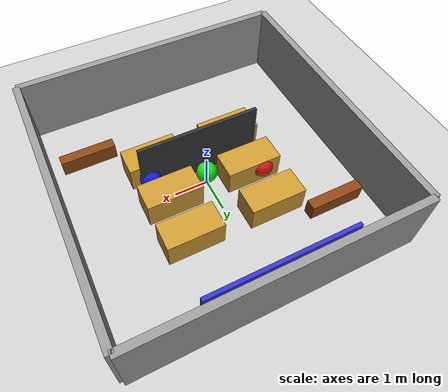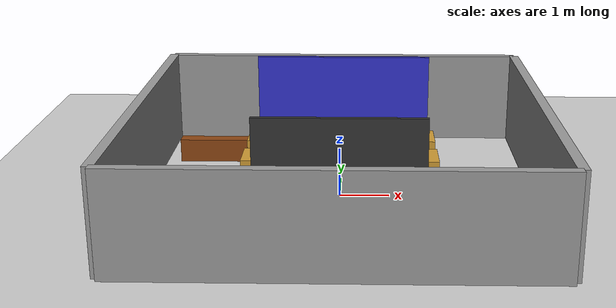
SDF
<sdf version='1.7'>
  <world name='classroom_labyrinthe'>
    <light name='sun' type='directional'>
      <cast_shadows>1</cast_shadows>
      <pose>0 0 10 0 -0 0</pose>
      <diffuse>0.8 0.8 0.8 1</diffuse>
      <specular>0.2 0.2 0.2 1</specular>
      <attenuation>
        <range>1000</range>
        <constant>0.9</constant>
        <linear>0.01</linear>
        <quadratic>0.001</quadratic>
      </attenuation>
      <direction>-0.5 0.1 -0.9</direction>
    </light>
    <model name='ground_plane'>
      <static>1</static>
      <link name='link'>
        <collision name='collision'>
          <geometry>
            <box>
              <size>20 20 1</size>
            </box>
          </geometry>
          <pose>0 0 -0.5 0 0 0</pose>
          <surface>
            <friction>
              <ode>
                <mu>0.5</mu>
                <mu2>0.5</mu2>
              </ode>
            </friction>
            <contact>
              <ode>
                <min_depth>0.001</min_depth>
                <kp>100.0</kp>
                <kd>1.0</kd>
              </ode>
            </contact>
          </surface>
        </collision>
        <visual name='visual'>
          <geometry>
            <plane>
              <normal>0 0 1</normal>
              <size>20 20</size>
            </plane>
          </geometry>
          <material>
            <script>
              <uri>file://media/materials/scripts/gazebo.material</uri>
              <name>Gazebo/Grey</name>
            </script>
          </material>
        </visual>
      </link>
    </model>
    <model name='wall_north'>
      <static>1</static>
      <link name='link'>
        <pose>0 4 1 0 -0 0</pose>
        <collision name='collision'>
          <geometry>
            <box>
              <size>8 0.2 2</size>
            </box>
          </geometry>
        </collision>
        <visual name='visual'>
          <geometry>
            <box>
              <size>8 0.2 2</size>
            </box>
          </geometry>
          <material>
            <ambient>0.6 0.6 0.6 1</ambient>
          </material>
        </visual>
      </link>
    </model>
    <model name='wall_south'>
      <static>1</static>
      <link name='link'>
        <pose>0 -4 1 0 -0 0</pose>
        <collision name='collision'>
          <geometry>
            <box>
              <size>8 0.2 2</size>
            </box>
          </geometry>
        </collision>
        <visual name='visual'>
          <geometry>
            <box>
              <size>8 0.2 2</size>
            </box>
          </geometry>
          <material>
            <ambient>0.6 0.6 0.6 1</ambient>
          </material>
        </visual>
      </link>
    </model>
    <model name='wall_west'>
      <static>1</static>
      <link name='link'>
        <pose>-4 0 1 0 -0 0</pose>
        <collision name='collision'>
          <geometry>
            <box>
              <size>0.2 8 2</size>
            </box>
          </geometry>
        </collision>
        <visual name='visual'>
          <geometry>
            <box>
              <size>0.2 8 2</size>
            </box>
          </geometry>
          <material>
            <ambient>0.6 0.6 0.6 1</ambient>
          </material>
        </visual>
      </link>
    </model>
    <model name='wall_east'>
      <static>1</static>
      <link name='link'>
        <pose>4 0 1 0 -0 0</pose>
        <collision name='collision'>
          <geometry>
            <box>
              <size>0.2 8 2</size>
            </box>
          </geometry>
        </collision>
        <visual name='visual'>
          <geometry>
            <box>
              <size>0.2 8 2</size>
            </box>
          </geometry>
          <material>
            <ambient>0.6 0.6 0.6 1</ambient>
          </material>
        </visual>
      </link>
    </model>
    <model name='table1'>
      <static>1</static>
      <link name='link'>
        <pose>-1.2 1.5 0.4 0 -0 0</pose>
        <collision name='collision'>
          <geometry>
            <box>
              <size>1.6 0.8 0.8</size>
            </box>
          </geometry>
        </collision>
        <visual name='visual'>
          <geometry>
            <box>
              <size>1.6 0.8 0.8</size>
            </box>
          </geometry>
          <material>
            <ambient>0.8 0.6 0.2 1</ambient>
          </material>
        </visual>
      </link>
    </model>
    <model name='table2'>
      <static>1</static>
      <link name='link'>
        <pose>1.2 1.5 0.4 0 -0 0</pose>
        <collision name='collision'>
          <geometry>
            <box>
              <size>1.6 0.8 0.8</size>
            </box>
          </geometry>
        </collision>
        <visual name='visual'>
          <geometry>
            <box>
              <size>1.6 0.8 0.8</size>
            </box>
          </geometry>
          <material>
            <ambient>0.8 0.6 0.2 1</ambient>
          </material>
        </visual>
      </link>
    </model>
    <model name='table3'>
      <static>1</static>
      <link name='link'>
        <pose>-1.2 0.2 0.4 0 -0 0</pose>
        <collision name='collision'>
          <geometry>
            <box>
              <size>1.6 0.8 0.8</size>
            </box>
          </geometry>
        </collision>
        <visual name='visual'>
          <geometry>
            <box>
              <size>1.6 0.8 0.8</size>
            </box>
          </geometry>
          <material>
            <ambient>0.8 0.6 0.2 1</ambient>
          </material>
        </visual>
      </link>
    </model>
    <model name='table4'>
      <static>1</static>
      <link name='link'>
        <pose>1.2 0.2 0.4 0 -0 0</pose>
        <collision name='collision'>
          <geometry>
            <box>
              <size>1.6 0.8 0.8</size>
            </box>
          </geometry>
        </collision>
        <visual name='visual'>
          <geometry>
            <box>
              <size>1.6 0.8 0.8</size>
            </box>
          </geometry>
          <material>
            <ambient>0.8 0.6 0.2 1</ambient>
          </material>
        </visual>
      </link>
    </model>
    <model name='table5'>
      <static>1</static>
      <link name='link'>
        <pose>-1.2 -1.1 0.4 0 -0 0</pose>
        <collision name='collision'>
          <geometry>
            <box>
              <size>1.6 0.8 0.8</size>
            </box>
          </geometry>
        </collision>
        <visual name='visual'>
          <geometry>
            <box>
              <size>1.6 0.8 0.8</size>
            </box>
          </geometry>
          <material>
            <ambient>0.8 0.6 0.2 1</ambient>
          </material>
        </visual>
      </link>
    </model>
    <model name='table6'>
      <static>1</static>
      <link name='link'>
        <pose>1.2 -1.1 0.4 0 -0 0</pose>
        <collision name='collision'>
          <geometry>
            <box>
              <size>1.6 0.8 0.8</size>
            </box>
          </geometry>
        </collision>
        <visual name='visual'>
          <geometry>
            <box>
              <size>1.6 0.8 0.8</size>
            </box>
          </geometry>
          <material>
            <ambient>0.8 0.6 0.2 1</ambient>
          </material>
        </visual>
      </link>
    </model>
    <model name='bench1'>
      <static>1</static>
      <link name='link'>
        <pose>-2.8 2.2 0.25 0 -0 0</pose>
        <collision name='collision'>
          <geometry>
            <box>
              <size>1.6 0.3 0.5</size>
            </box>
          </geometry>
        </collision>
        <visual name='visual'>
          <geometry>
            <box>
              <size>1.6 0.3 0.5</size>
            </box>
          </geometry>
          <material>
            <ambient>0.55 0.27 0.07 1</ambient>
          </material>
        </visual>
      </link>
    </model>
    <model name='bench2'>
      <static>1</static>
      <link name='link'>
        <pose>2.8 -2.2 0.25 0 -0 0</pose>
        <collision name='collision'>
          <geometry>
            <box>
              <size>1.6 0.3 0.5</size>
            </box>
          </geometry>
        </collision>
        <visual name='visual'>
          <geometry>
            <box>
              <size>1.6 0.3 0.5</size>
            </box>
          </geometry>
          <material>
            <ambient>0.55 0.27 0.07 1</ambient>
          </material>
        </visual>
      </link>
    </model>
    <model name='sphere1'>
      <static>1</static>
      <link name='link'>
        <pose>-1.5 0.5 0.5 0 -0 0</pose>
        <collision name='collision'>
          <geometry>
            <sphere>
              <radius>0.3</radius>
            </sphere>
          </geometry>
        </collision>
        <visual name='visual'>
          <geometry>
            <sphere>
              <radius>0.3</radius>
            </sphere>
          </geometry>
          <material>
            <ambient>0.9 0.1 0.1 1</ambient>
            <diffuse>0.9 0.1 0.1 1</diffuse>
          </material>
        </visual>
      </link>
    </model>
    <model name='sphere2'>
      <static>1</static>
      <link name='link'>
        <pose>0 0 0.5 0 -0 0</pose>
        <collision name='collision'>
          <geometry>
            <sphere>
              <radius>0.3</radius>
            </sphere>
          </geometry>
        </collision>
        <visual name='visual'>
          <geometry>
            <sphere>
              <radius>0.3</radius>
            </sphere>
          </geometry>
          <material>
            <ambient>0.1 0.9 0.1 1</ambient>
            <diffuse>0.1 0.9 0.1 1</diffuse>
          </material>
        </visual>
      </link>
    </model>
    <model name='sphere3'>
      <static>1</static>
      <link name='link'>
        <pose>1.5 -0.5 0.5 0 -0 0</pose>
        <collision name='collision'>
          <geometry>
            <sphere>
              <radius>0.3</radius>
            </sphere>
          </geometry>
        </collision>
        <visual name='visual'>
          <geometry>
            <sphere>
              <radius>0.3</radius>
            </sphere>
          </geometry>
          <material>
            <ambient>0.1 0.1 0.9 1</ambient>
            <diffuse>0.1 0.1 0.9 1</diffuse>
          </material>
        </visual>
      </link>
    </model>
    <model name='small_wall'>
      <static>1</static>
      <link name='link'>
        <pose>0 -0.5 0.9 0 -0 0</pose>
        <collision name='collision'>
          <geometry>
            <box>
              <size>3.5 0.1 1.8</size>
            </box>
          </geometry>
        </collision>
        <visual name='visual'>
          <geometry>
            <box>
              <size>3.5 0.1 1.8</size>
            </box>
          </geometry>
          <material>
            <ambient>0.2 0.2 0.2 1</ambient>
          </material>
        </visual>
      </link>
    </model>
    <model name='whiteboard'>
      <static>1</static>
      <link name='link'>
        <pose>0 3.8 1.2 0 -0 0</pose>
        <collision name='collision'>
          <geometry>
            <box>
              <size>4 0.1 1.6</size>
            </box>
          </geometry>
        </collision>
        <visual name='visual'>
          <geometry>
            <box>
              <size>4 0.1 1.6</size>
            </box>
          </geometry>
          <material>
            <ambient>0.2 0.2 0.8 1</ambient>
          </material>
        </visual>
      </link>
    </model>
    <physics type='ode'>
      <max_step_size>0.01</max_step_size>
      <real_time_factor>1</real_time_factor>
      <real_time_update_rate>1000</real_time_update_rate>
    </physics>
    <gravity>0 0 -9.8</gravity>
    <scene>
      <ambient>0.4 0.4 0.4 1</ambient>
      <background>0.7 0.7 0.7 1</background>
      <shadows>1</shadows>
    </scene>
    <magnetic_field>6e-06 2.3e-05 -4.2e-05</magnetic_field>
    <atmosphere type='adiabatic'/>
  </world>
</sdf>
